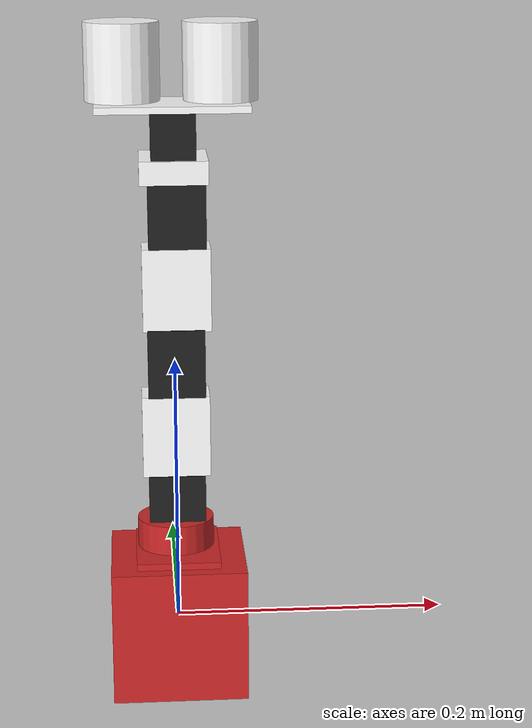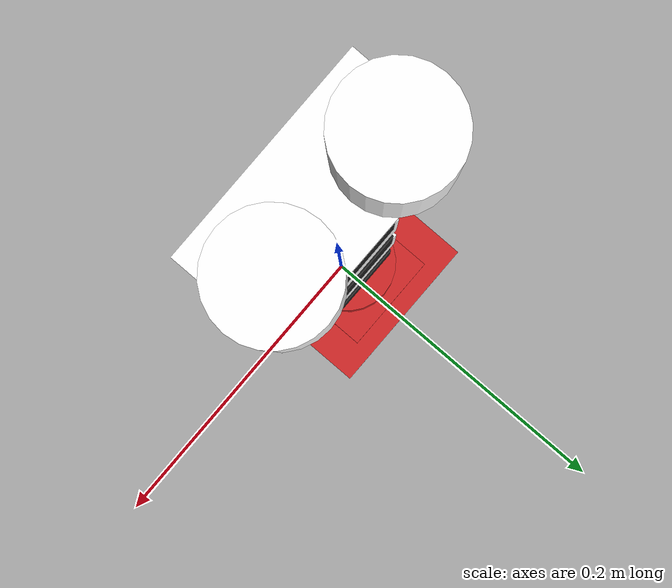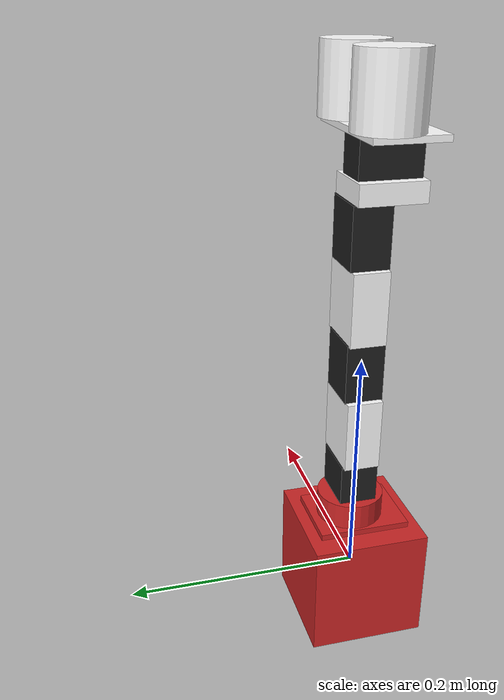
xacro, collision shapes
<?xml version="1.0"?>

<robot name="arm" xmlns:xacro="http://www.ros.org/wiki/xacro">

  <link name="base_link">
    <visual>
      <geometry>
        <mesh filename="package://arm_description/meshes/base_link.stl" scale="0.001 0.001 0.001"/>
      </geometry>
      <origin rpy="0 0 0" xyz="0 0 0"/>
    </visual>
    <collision>
      <geometry>
        <box size="0.1 0.1 0.1"/>
      </geometry>
      <origin rpy="0 0 0" xyz="0 0 0"/>
    </collision>
    <inertial>
      <mass value="0.1"/>
      <inertia ixx="1.06682889e+08" ixy="0.0" ixz="0.0" iyy="9.92165844e+07" iyz="0.0" izz="1.26939175e+08"/>
    </inertial>
  </link>

  <joint name="base_1_2" type="fixed">
    <parent link="base_link"/>
    <child link="base_turn"/>
    <origin xyz="-0.0011 -0.011 0.05"/>
  </joint>

  <link name="base_turn">
    <visual>
      <geometry>
        <mesh filename="package://arm_description/meshes/base_turn.stl" scale="0.001 0.001 0.001"/>
      </geometry>
      <origin rpy="0 0 0" xyz="0 0 0"/>
    </visual>
    <collision>
      <geometry>
          <!--mesh filename="package://arm_description/meshes/base_turn.stl" scale="0.001 0.001 0.001"/-->
          <box size="0.062 0.079 0.007"/>
        </geometry>
      <origin rpy="0 0 0" xyz="0.001 0.011 0.0016"/>
    </collision>
    <inertial>
      <mass value="0.1"/>
      <inertia ixx="1.35223008e+07" ixy="0.0" ixz="0.0" iyy="8.13814925e+06" iyz="0.0" izz="2.14903814e+07"/>
    </inertial>
  </link>

  <joint name="j0" type="revolute">
    <parent link="base_turn"/>
    <child link="base_turn_rot"/>
    <origin xyz="-0.0 0.0155 0.013" rpy = "0 0 -1.57"/>
    <axis xyz="0 0 1" />
    <limit effort="300" velocity="0.1" lower="-2.57" upper="2.57"/>
  </joint>

  <link name="base_turn_rot">
    <visual>
      <geometry>
        <mesh filename="package://arm_description/meshes/base_turn_table_rot.stl" scale="0.001 0.001 0.001"/>
      </geometry>

    </visual>
    <collision>
      <geometry>
          <!--mesh filename="package://arm_description/meshes/base_turn_table_rot.stl" scale="0.001 0.001 0.001"/-->
          <cylinder length="0.022" radius="0.0285"/>
        </geometry>
      <origin rpy="0 0 0" xyz="0 0 0.0035"/>
    </collision>

    <inertial>
      <mass value="0.1"/>
      <inertia ixx="3.41992001e+06" ixy="0.0" ixz="0.0" iyy="2.85587836e+06" iyz="0.0" izz="5.84313870e+06"/>
    </inertial>
  </link>

  <joint name="base_turn_rot_dyn2" type="fixed">
    <parent link="base_turn_rot"/>
    <child link="dyn2"/>
    <origin xyz="0 0 0.0385" rpy="0 1.57 1.57 "/>
  </joint>

  <link name="dyn2">
    <visual>
      <geometry>
        <mesh filename="package://arm_description/meshes/dyn.stl" scale="0.01 0.01 0.01"/>
      </geometry>

      <origin rpy="0 0 0" xyz="0 0 0"/>
    </visual>
    <collision>
      <geometry>
          <!--mesh filename="package://arm_description/meshes/dyn.stl" scale="0.01 0.01 0.01"/-->
          <box size="0.051 0.032 0.042"/>
        </geometry>
      <origin rpy="0 0 0" xyz="0.014 0 0.0014"/>
    </collision>
     <inertial>
      <mass value="0.1"/>
      <inertia ixx="6.90013881e+01" ixy="0.0" ixz="0.0" iyy="1.24554875e+02" iyz="0.0" izz="1.04295793e+02"/>
    </inertial>
  </link>

  <joint name="j1" type="revolute">
    <parent link="dyn2"/>
    <child link="dyn2_r"/>
    <origin xyz="0 0 0.0" rpy="0 0 0"/>
    <axis xyz="0 0 1" />
    <limit effort="300" velocity="0.1" lower="-3.14" upper="3.14"/>
  </joint>

  <link name="dyn2_r">

  </link>

  <joint name="dyn2_f4" type="fixed">
    <parent link="dyn2_r"/>
    <child link="f4"/>
    <origin xyz="-0.047 0.0 -0.003" rpy="0 1.57 1.57"/>
  </joint>

  <link name="f4">
    <visual>
      <geometry>
        <mesh filename="package://arm_description/meshes/f4_n_f3.stl" scale="0.001 0.001 0.001"/>
      </geometry>
      <origin rpy="0 0 0" xyz="0 0 0"/>
      <material name="white">
        <color rgba="1 1 1 1"/>
      </material>
    </visual>
    <collision>
      <geometry>
          <!--mesh filename="package://arm_description/meshes/f4_n_f3.stl" scale="0.001 0.001 0.001"/-->
          <box size ="0.05 0.061 0.03"/>
        </geometry>
      <origin rpy="0 0 0" xyz="-0.0043 -0.005 0"/>
    </collision>
     <inertial>
      <mass value="0.1"/>
      <inertia ixx="6.90013881e+01" ixy="0.0" ixz="0.0" iyy="1.24554875e+02" iyz="0.0" izz="1.04295793e+02"/>
    </inertial>
  </link>

  <joint name="d4_dyn3" type="fixed">
    <parent link="f4"/>
    <child link="dyn3"/>
    <origin xyz="-0.004 0.0645 0 " rpy="-1.57 3.14 1.57"/>
  </joint>

  <link name="dyn3">
    <visual>
      <geometry>
        <mesh filename="package://arm_description/meshes/dyn.stl" scale="0.01 0.01 0.01"/>
      </geometry>
      <origin rpy="0 0 0" xyz="0 0 0"/>
    </visual>
    <collision>
      <geometry>
          <!--mesh filename="package://arm_description/meshes/dyn.stl" scale="0.01 0.01 0.01"/-->
          <box size="0.051 0.032 0.042"/>
        </geometry>
      <origin rpy="0 0 0" xyz="0.014 0 0.0014"/>
    </collision>
     <inertial>
      <mass value="0.1"/>
      <inertia ixx="6.90013881e+01" ixy="0.0" ixz="0.0" iyy="1.24554875e+02" iyz="0.0" izz="1.04295793e+02"/>
    </inertial>
  </link>

  <joint name="j2" type="revolute">
    <parent link="dyn3"/>
    <child link="dyn3_r"/>
    <origin xyz="0 0 0.0" rpy="0 0 0"/>
    <axis xyz="0 0 1" />
    <limit effort="300" velocity="0.1" lower="-3.14" upper="3.14"/>
  </joint>

  <link name="dyn3_r">

  </link>

  <joint name="dyn3_f5" type="fixed">
    <parent link="dyn3_r"/>
    <child link="f5"/>
    <origin xyz="-0.046 -0.0 -0.002" rpy="1.57 1.57 3.1415 "/>
  </joint>

  <link name="f5">
    <visual>
      <geometry>
        <mesh filename="package://arm_description/meshes/f4_n_f3.stl" scale="0.001 0.001 0.001"/>
      </geometry>
      <origin rpy="0 0 0" xyz="0 0 0"/>
      <material name="white">
        <color rgba="1 1 1 1"/>
      </material>
    </visual>
    <collision>
      <geometry>
          <!--mesh filename="package://arm_description/meshes/f4_n_f3.stl" scale="0.001 0.001 0.001"/-->
          <box size="0.05 0.061 0.03"/>
        </geometry>
      <origin rpy="0 0 0" xyz="-0.0043 -0.005 0"/>
    </collision>

    <inertial>
      <mass value="0.1"/>
      <inertia ixx="1.13130695e+07" ixy="0.0" ixz="0.0" iyy="8.78052401e+06" iyz="0.0" izz="1.72940286e+07"/>
    </inertial>
  </link>

  <joint name="f5_dyn4" type="fixed">
    <parent link="f5"/>
    <child link="dyn4"/>
    <origin xyz="-0.004 0.065 -0.0" rpy="-1.57 3.1415 1.57 "/>
  </joint>

  <link name="dyn4">
    <visual>
      <geometry>
        <mesh filename="package://arm_description/meshes/dyn.stl" scale="0.01 0.01 0.01"/>
      </geometry>

      <origin rpy="0 0 0" xyz="0 0 0"/>
    </visual>
    <collision>
      <geometry>
          <!--mesh filename="package://arm_description/meshes/dyn.stl" scale="0.01 0.01 0.01"/-->
          <box size="0.051 0.032 0.042"/>
        </geometry>
      <origin rpy="0 0 0" xyz="0.014 0 0.0014"/>
    </collision>

    <inertial>
      <mass value="0.1"/>
      <inertia ixx="6.90013881e+01" ixy="0.0" ixz="0.0" iyy="1.24554875e+02" iyz="0.0" izz="1.04295793e+02"/>
    </inertial>
  </link>

  <joint name="j3" type="revolute">
    <parent link="dyn4"/>
    <child link="dyn4_r"/>
    <origin xyz="0 0 0.0" rpy="0 0 0"/>
    <axis xyz="0 0 1" />
    <limit effort="300" velocity="0.1" lower="-3.14" upper="3.14"/>
  </joint>

  <link name="dyn4_r">

  </link>

  <joint name="f5_wrist" type="fixed">
    <parent link="dyn4_r"/>
    <child link="wrist"/>
    <origin xyz="-0.017 -0.013 0.003" rpy="1.57 1.57 -1.57"/>
  </joint>

  <link name="wrist">
    <visual>
      <geometry>
        <mesh filename="package://arm_description/meshes/wrist.stl" scale="0.001 0.001 0.001"/>
      </geometry>
      <origin rpy="0 0 0" xyz="0 0 0"/>
      <material name="white">
        <color rgba="1 1 1 1"/>
      </material>
    </visual>
    <collision>
      <geometry>
        <box size="0.049 0.055 0.017"/>
        <!--mesh filename="package://arm_description/meshes/wrist.stl" scale="0.001 0.001 0.001"/-->
      </geometry>
      <origin rpy="0 0 0" xyz="0.0039 0 0.003"/>
    </collision>

     <inertial>
      <mass value="0.1"/>
      <inertia ixx="6.90013881e+01" ixy="0.0" ixz="0.0" iyy="1.24554875e+02" iyz="0.0" izz="1.04295793e+02"/>
    </inertial>
  </link>

  <joint name="wrist_dyn5" type="fixed">
    <parent link="wrist"/>
    <child link="dyn5"/>
    <origin xyz="0.0038 -0.013 0.0275" rpy="0 0 1.57"/>
  </joint>

  <link name="dyn5">
    <visual>
      <geometry>
        <mesh filename="package://arm_description/meshes/dyn.stl" scale="0.01 0.01 0.01"/>
      </geometry>
      <origin rpy="0 0 0" xyz="0 0 0"/>
    </visual>
    <collision>
      <geometry>
          <!--mesh filename="package://arm_description/meshes/dyn.stl" scale="0.01 0.01 0.01"/-->
          <box size="0.051 0.032 0.042"/>
        </geometry>
      <origin rpy="0 0 0" xyz="0.013 0 0"/>
    </collision>

    <inertial>
      <mass value="0.1"/>
      <inertia ixx="6.90013881e+01" ixy="0.0" ixz="0.0" iyy="1.24554875e+02" iyz="0.0" izz="1.04295793e+02"/>
    </inertial>
  </link>

  <joint name="dyn5_dyn5_r" type="fixed">
    <parent link="dyn5"/>
    <child link="dyn5_r"/>
    <origin xyz="0 0 0.0" rpy="0 0 0"/>
    <axis xyz="0 0 1" />
    <limit effort="300" velocity="0.1" lower="-3.14" upper="3.14"/>
  </joint>

  <link name="dyn5_r">

  </link>

  <joint name="wrist_rotate_dyn5" type="fixed">
    <parent link="dyn5_r"/>
    <child link="crawer_base"/>
    <origin xyz="0.015 0 0.019" rpy="0 0 1.57"/>
  </joint>

  <link name="crawer_base">
    <visual>
      <geometry>
        <mesh filename="package://arm_description/meshes/the_crawer_base.stl" scale="0.001 0.001 0.001"/>
      </geometry>
      <origin rpy="0 0 0" xyz="0 0 0"/>
      <material name="white">
        <color rgba="1 1 1 1"/>
      </material>
    </visual>
    <collision>
      <geometry>
          <box size="0.11 0.058 0.005"/>
          <!--mesh filename="package://arm_description/meshes/the_crawer_base.stl" scale="0.001 0.001 0.001"/-->
        </geometry>
      <origin rpy="0 0 0" xyz="0 0.0046 0.0005"/>
    </collision>

    <inertial>
      <mass value="0.1"/>
      <inertia ixx="6.90013881e+01" ixy="0.0" ixz="0.0" iyy="1.24554875e+02" iyz="0.0" izz="1.04295793e+02"/>
    </inertial>
  </link>

  <joint name="crawer_base_crawer_left" type="fixed">
    <parent link="crawer_base"/>
    <child link="crawer_left"/>
    <origin xyz="-0.03 0.015 0.01" rpy="0 -1.57 0"/>
  </joint>

  <link name="crawer_left">
    <visual>
      <geometry>
        <mesh filename="package://arm_description/meshes/the_crawer.stl" scale="0.001 0.001 0.001"/>
      </geometry>
      <origin rpy="0 0 0" xyz="0 0 0"/>
      <material name="white">
        <color rgba="1 1 1 1"/>
      </material>
    </visual>
    <collision>
      <geometry>
          <cylinder length="0.056" radius="0.027"/>
          <!--mesh filename="package://arm_description/meshes/the_crawer.stl" scale="0.001 0.001 0.001"/-->
        </geometry>
      <origin rpy="0 1.571 0" xyz="0.021 0 0.005"/>
    </collision>

    <inertial>
      <mass value="0.1"/>
      <inertia ixx="6.90013881e+01" ixy="0.0" ixz="0.0" iyy="1.24554875e+02" iyz="0.0" izz="1.04295793e+02"/>
    </inertial>
  </link>

  <joint name="crawer_base_crawer_right" type="fixed">
    <parent link="crawer_base"/>
    <child link="crawer_right"/>
    <origin xyz="0.03 0.015 0.01" rpy="3.1415 -1.57 0"/>
  </joint>

  <link name="crawer_right">
    <visual>
      <geometry>
        <mesh filename="package://arm_description/meshes/the_crawer.stl" scale="0.001 0.001 0.001"/>
      </geometry>
      <origin rpy="0 0 0" xyz="0 0 0"/>
      <material name="white">
        <color rgba="1 1 1 1"/>
      </material>
    </visual>
    <collision>
      <geometry>
          <cylinder length="0.056" radius="0.027"/>
          <!--mesh filename="package://arm_description/meshes/the_crawer.stl" scale="0.001 0.001 0.001"/-->
        </geometry>
        <origin rpy="0 1.571 0" xyz="0.021 0 0.005"/>
    </collision>

    <inertial>
      <mass value="0.1"/>
      <inertia ixx="6.90013881e+01" ixy="0.0" ixz="0.0" iyy="1.24554875e+02" iyz="0.0" izz="1.04295793e+02"/>
    </inertial>
  </link>

  <link name="camera_link">
    <visual>
      <geometry>
        <!--box size="0.01 0.01 0.01"/-->
        <mesh filename="package://arm_description/meshes/YASHICA_ELECTRO_35.stl" scale="0.0003 0.0003 0.0003"/>
      </geometry>
      <origin rpy="0 0 1.571" xyz="0.015 0 -0.02"/>
      <material name="white"/>
    </visual>
    <collision>
      <origin rpy="0 0 0" xyz="0 -0.03 -0.02"/>
      <geometry>
        <box size="0.01 0.01 0.01"/>
      </geometry>
    </collision>
  </link>

  <joint name="camera_joint" type="fixed">
      <parent link="base_link"/>
      <child link="camera_link"/>
      <origin rpy="0 0 0" xyz="0 0 0"/>
  </joint>

  <xacro:include filename="$(find arm_description)/urdf/arm.gazebo.xacro" />
  <xacro:arm_gazebo robot_name="arm"/>

  <xacro:include filename="$(find arm_description)/urdf/arm.transmission.xacro" />
  <xacro:arm_transmission hardware_interface="PositionJointInterface"/>

</robot>
